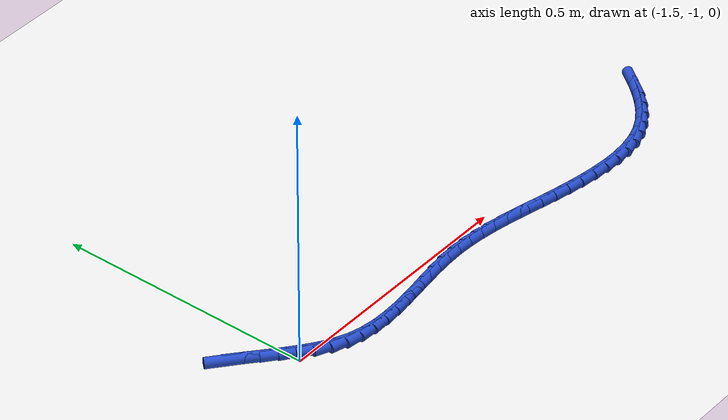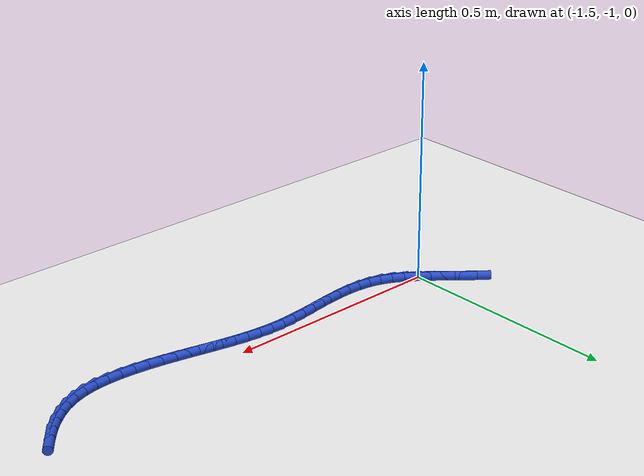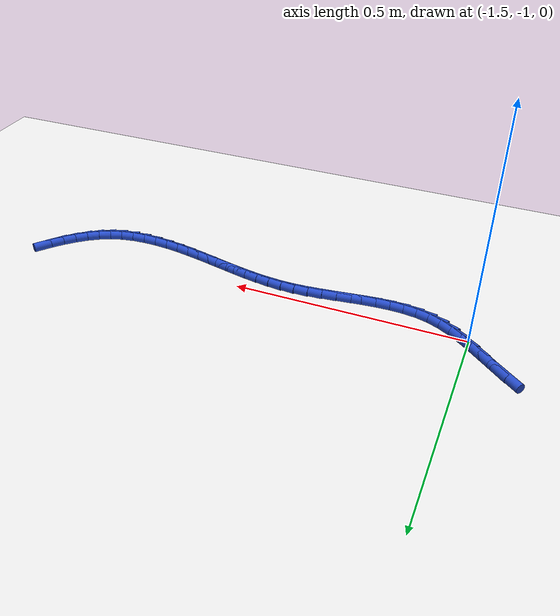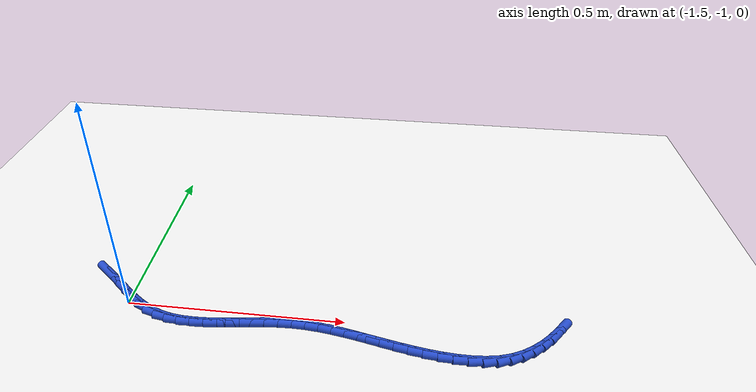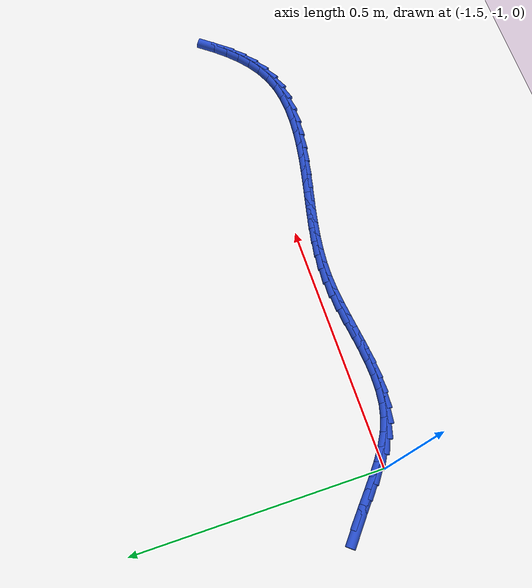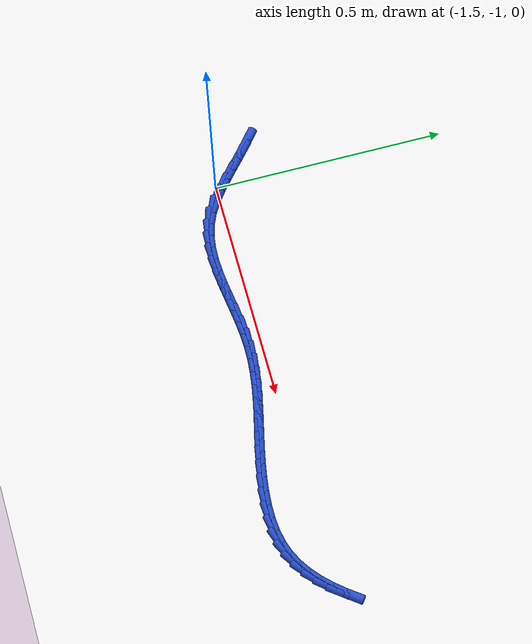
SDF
<sdf version="1.6">
 <world name="default">
  <model name="ground_plane">
   <static>1</static>
   <link name="link">
    <collision name="collision">
     <geometry><plane><normal>0 0 1</normal><size>100 100</size></plane></geometry>
     <surface><friction><ode><mu>100</mu><mu2>50</mu2></ode></friction></surface>
    </collision>
    <visual name="visual">
     <cast_shadows>0</cast_shadows>
     <geometry><plane><normal>0 0 1</normal><size>100 100</size></plane></geometry>
     <material>
      <script><uri>file://media/materials/scripts/gazebo.material</uri><name>Gazebo/WhiteGlow</name></script>
     </material>
    </visual>
   </link>
  </model>
  <model name="line">
   <link name="link_154">
    <pose>-1.5815976846223327 -0.913355872803538 0.01 0 1.57 -0.6890473158257607</pose>
    <collision name="collision">
     <geometry><cylinder><radius>0.01</radius><length>0.08</length></cylinder></geometry>
    </collision>
    <visual name="visual">
     <material>
      <script><name>Gazebo/Blue</name><uri>file://media/materials/scripts/gazebo.material</uri></script>
     </material>
     <geometry><cylinder><radius>0.01</radius><length>0.08</length></cylinder></geometry>
    </visual>
   </link>
   <link name="link_155">
    <pose>-1.557754601798094 -0.9329962720357301 0.01 0 1.57 -0.7118150997280901</pose>
    <collision name="collision">
     <geometry><cylinder><radius>0.01</radius><length>0.08</length></cylinder></geometry>
    </collision>
    <visual name="visual">
     <material>
      <script><name>Gazebo/Blue</name><uri>file://media/materials/scripts/gazebo.material</uri></script>
     </material>
     <geometry><cylinder><radius>0.01</radius><length>0.08</length></cylinder></geometry>
    </visual>
   </link>
   <link name="link_156">
    <pose>-1.53432056611038 -0.9532125727063401 0.01 0 1.57 -0.7089277884613254</pose>
    <collision name="collision">
     <geometry><cylinder><radius>0.01</radius><length>0.08</length></cylinder></geometry>
    </collision>
    <visual name="visual">
     <material>
      <script><name>Gazebo/Blue</name><uri>file://media/materials/scripts/gazebo.material</uri></script>
     </material>
     <geometry><cylinder><radius>0.01</radius><length>0.08</length></cylinder></geometry>
    </visual>
   </link>
   <link name="link_157">
    <pose>-1.5110045711086688 -0.9732099095961065 0.01 0 1.57 -0.6797140224128315</pose>
    <collision name="collision">
     <geometry><cylinder><radius>0.01</radius><length>0.08</length></cylinder></geometry>
    </collision>
    <visual name="visual">
     <material>
      <script><name>Gazebo/Blue</name><uri>file://media/materials/scripts/gazebo.material</uri></script>
     </material>
     <geometry><cylinder><radius>0.01</radius><length>0.08</length></cylinder></geometry>
    </visual>
   </link>
   <link name="link_158">
    <pose>-1.4875156103424403 -0.9921934174857672 0.01 0 1.57 -0.6220599378149294</pose>
    <collision name="collision">
     <geometry><cylinder><radius>0.01</radius><length>0.08</length></cylinder></geometry>
    </collision>
    <visual name="visual">
     <material>
      <script><name>Gazebo/Blue</name><uri>file://media/materials/scripts/gazebo.material</uri></script>
     </material>
     <geometry><cylinder><radius>0.01</radius><length>0.08</length></cylinder></geometry>
    </visual>
   </link>
   <link name="link_159">
    <pose>-1.4635626773611718 -1.00936823115606 0.01 0 1.57 -0.5328415370142888</pose>
    <collision name="collision">
     <geometry><cylinder><radius>0.01</radius><length>0.08</length></cylinder></geometry>
    </collision>
    <visual name="visual">
     <material>
      <script><name>Gazebo/Blue</name><uri>file://media/materials/scripts/gazebo.material</uri></script>
     </material>
     <geometry><cylinder><radius>0.01</radius><length>0.08</length></cylinder></geometry>
    </visual>
   </link>
   <link name="link_160">
    <pose>-1.438854765714341 -1.0239394853877226 0.01 0 1.57 -0.40932816360541957</pose>
    <collision name="collision">
     <geometry><cylinder><radius>0.01</radius><length>0.08</length></cylinder></geometry>
    </collision>
    <visual name="visual">
     <material>
      <script><name>Gazebo/Blue</name><uri>file://media/materials/scripts/gazebo.material</uri></script>
     </material>
     <geometry><cylinder><radius>0.01</radius><length>0.08</length></cylinder></geometry>
    </visual>
   </link>
   <link name="link_161">
    <pose>-1.4131008843091826 -1.035112360996508 0.01 0 1.57 -0.2627518671939328</pose>
    <collision name="collision">
     <geometry><cylinder><radius>0.01</radius><length>0.08</length></cylinder></geometry>
    </collision>
    <visual name="visual">
     <material>
      <script><name>Gazebo/Blue</name><uri>file://media/materials/scripts/gazebo.material</uri></script>
     </material>
     <geometry><cylinder><radius>0.01</radius><length>0.08</length></cylinder></geometry>
    </visual>
   </link>
   <link name="link_162">
    <pose>-1.386104013142424 -1.0423737180107608 0.01 0 1.57 -0.13377866792018103</pose>
    <collision name="collision">
     <geometry><cylinder><radius>0.01</radius><length>0.08</length></cylinder></geometry>
    </collision>
    <visual name="visual">
     <material>
      <script><name>Gazebo/Blue</name><uri>file://media/materials/scripts/gazebo.material</uri></script>
     </material>
     <geometry><cylinder><radius>0.01</radius><length>0.08</length></cylinder></geometry>
    </visual>
   </link>
   <link name="link_163">
    <pose>-1.357983345100116 -1.0461582675282832 0.01 0 1.57 -0.03239229442047825</pose>
    <collision name="collision">
     <geometry><cylinder><radius>0.01</radius><length>0.08</length></cylinder></geometry>
    </collision>
    <visual name="visual">
     <material>
      <script><name>Gazebo/Blue</name><uri>file://media/materials/scripts/gazebo.material</uri></script>
     </material>
     <geometry><cylinder><radius>0.01</radius><length>0.08</length></cylinder></geometry>
    </visual>
   </link>
   <link name="link_164">
    <pose>-1.328924514376184 -1.0470998790836588 0.01 0 1.57 0.04249031399444827</pose>
    <collision name="collision">
     <geometry><cylinder><radius>0.01</radius><length>0.08</length></cylinder></geometry>
    </collision>
    <visual name="visual">
     <material>
      <script><name>Gazebo/Blue</name><uri>file://media/materials/scripts/gazebo.material</uri></script>
     </material>
     <geometry><cylinder><radius>0.01</radius><length>0.08</length></cylinder></geometry>
    </visual>
   </link>
   <link name="link_165">
    <pose>-1.2991131551645552 -1.0458324222114703 0.01 0 1.57 0.09330365197728344</pose>
    <collision name="collision">
     <geometry><cylinder><radius>0.01</radius><length>0.08</length></cylinder></geometry>
    </collision>
    <visual name="visual">
     <material>
      <script><name>Gazebo/Blue</name><uri>file://media/materials/scripts/gazebo.material</uri></script>
     </material>
     <geometry><cylinder><radius>0.01</radius><length>0.08</length></cylinder></geometry>
    </visual>
   </link>
   <link name="link_166">
    <pose>-1.2687349016591547 -1.0429897664463008 0.01 0 1.57 0.1224033743826129</pose>
    <collision name="collision">
     <geometry><cylinder><radius>0.01</radius><length>0.08</length></cylinder></geometry>
    </collision>
    <visual name="visual">
     <material>
      <script><name>Gazebo/Blue</name><uri>file://media/materials/scripts/gazebo.material</uri></script>
     </material>
     <geometry><cylinder><radius>0.01</radius><length>0.08</length></cylinder></geometry>
    </visual>
   </link>
   <link name="link_167">
    <pose>-1.2379753880539102 -1.039205781322733 0.01 0 1.57 0.1314116525096149</pose>
    <collision name="collision">
     <geometry><cylinder><radius>0.01</radius><length>0.08</length></cylinder></geometry>
    </collision>
    <visual name="visual">
     <material>
      <script><name>Gazebo/Blue</name><uri>file://media/materials/scripts/gazebo.material</uri></script>
     </material>
     <geometry><cylinder><radius>0.01</radius><length>0.08</length></cylinder></geometry>
    </visual>
   </link>
   <link name="link_168">
    <pose>-1.2070202485427473 -1.0351143363753499 0.01 0 1.57 0.12099557944460802</pose>
    <collision name="collision">
     <geometry><cylinder><radius>0.01</radius><length>0.08</length></cylinder></geometry>
    </collision>
    <visual name="visual">
     <material>
      <script><name>Gazebo/Blue</name><uri>file://media/materials/scripts/gazebo.material</uri></script>
     </material>
     <geometry><cylinder><radius>0.01</radius><length>0.08</length></cylinder></geometry>
    </visual>
   </link>
   <link name="link_169">
    <pose>-1.1760551173195928 -1.0313493011387351 0.01 0 1.57 0.09084386717569258</pose>
    <collision name="collision">
     <geometry><cylinder><radius>0.01</radius><length>0.08</length></cylinder></geometry>
    </collision>
    <visual name="visual">
     <material>
      <script><name>Gazebo/Blue</name><uri>file://media/materials/scripts/gazebo.material</uri></script>
     </material>
     <geometry><cylinder><radius>0.01</radius><length>0.08</length></cylinder></geometry>
    </visual>
   </link>
   <link name="link_170">
    <pose>-1.1452656285783713 -1.0285445451474708 0.01 0 1.57 0.039775032890308155</pose>
    <collision name="collision">
     <geometry><cylinder><radius>0.01</radius><length>0.08</length></cylinder></geometry>
    </collision>
    <visual name="visual">
     <material>
      <script><name>Gazebo/Blue</name><uri>file://media/materials/scripts/gazebo.material</uri></script>
     </material>
     <geometry><cylinder><radius>0.01</radius><length>0.08</length></cylinder></geometry>
    </visual>
   </link>
   <link name="link_171">
    <pose>-1.1148373203724473 -1.0273336195374934 0.01 0 1.57 -0.026356756659822275</pose>
    <collision name="collision">
     <geometry><cylinder><radius>0.01</radius><length>0.08</length></cylinder></geometry>
    </collision>
    <visual name="visual">
     <material>
      <script><name>Gazebo/Blue</name><uri>file://media/materials/scripts/gazebo.material</uri></script>
     </material>
     <geometry><cylinder><radius>0.01</radius><length>0.08</length></cylinder></geometry>
    </visual>
   </link>
   <link name="link_172">
    <pose>-1.0848872225739226 -1.0281231898181062 0.01 0 1.57 -0.0868173020914685</pose>
    <collision name="collision">
     <geometry><cylinder><radius>0.01</radius><length>0.08</length></cylinder></geometry>
    </collision>
    <visual name="visual">
     <material>
      <script><name>Gazebo/Blue</name><uri>file://media/materials/scripts/gazebo.material</uri></script>
     </material>
     <geometry><cylinder><radius>0.01</radius><length>0.08</length></cylinder></geometry>
    </visual>
   </link>
   <link name="link_173">
    <pose>-1.0553435359332186 -1.0306945565741321 0.01 0 1.57 -0.13687668580113288</pose>
    <collision name="collision">
     <geometry><cylinder><radius>0.01</radius><length>0.08</length></cylinder></geometry>
    </collision>
    <visual name="visual">
     <material>
      <script><name>Gazebo/Blue</name><uri>file://media/materials/scripts/gazebo.material</uri></script>
     </material>
     <geometry><cylinder><radius>0.01</radius><length>0.08</length></cylinder></geometry>
    </visual>
   </link>
   <link name="link_174">
    <pose>-1.0261022059391962 -1.0347221973059564 0.01 0 1.57 -0.17577898685224924</pose>
    <collision name="collision">
     <geometry><cylinder><radius>0.01</radius><length>0.08</length></cylinder></geometry>
    </collision>
    <visual name="visual">
     <material>
      <script><name>Gazebo/Blue</name><uri>file://media/materials/scripts/gazebo.material</uri></script>
     </material>
     <geometry><cylinder><radius>0.01</radius><length>0.08</length></cylinder></geometry>
    </visual>
   </link>
   <link name="link_175">
    <pose>-0.9970591780807156 -1.0398805895139633 0.01 0 1.57 -0.20316379247448885</pose>
    <collision name="collision">
     <geometry><cylinder><radius>0.01</radius><length>0.08</length></cylinder></geometry>
    </collision>
    <visual name="visual">
     <material>
      <script><name>Gazebo/Blue</name><uri>file://media/materials/scripts/gazebo.material</uri></script>
     </material>
     <geometry><cylinder><radius>0.01</radius><length>0.08</length></cylinder></geometry>
    </visual>
   </link>
   <link name="link_176">
    <pose>-0.9681103978466398 -1.0458442106985368 0.01 0 1.57 -0.2189350190055144</pose>
    <collision name="collision">
     <geometry><cylinder><radius>0.01</radius><length>0.08</length></cylinder></geometry>
    </collision>
    <visual name="visual">
     <material>
      <script><name>Gazebo/Blue</name><uri>file://media/materials/scripts/gazebo.material</uri></script>
     </material>
     <geometry><cylinder><radius>0.01</radius><length>0.08</length></cylinder></geometry>
    </visual>
   </link>
   <link name="link_177">
    <pose>-0.9391518107258288 -1.052287538360062 0.01 0 1.57 -0.22315398365123187</pose>
    <collision name="collision">
     <geometry><cylinder><radius>0.01</radius><length>0.08</length></cylinder></geometry>
    </collision>
    <visual name="visual">
     <material>
      <script><name>Gazebo/Blue</name><uri>file://media/materials/scripts/gazebo.material</uri></script>
     </material>
     <geometry><cylinder><radius>0.01</radius><length>0.08</length></cylinder></geometry>
    </visual>
   </link>
   <link name="link_178">
    <pose>-0.9100793622071434 -1.0588850499989235 0.01 0 1.57 -0.21597360536380122</pose>
    <collision name="collision">
     <geometry><cylinder><radius>0.01</radius><length>0.08</length></cylinder></geometry>
    </collision>
    <visual name="visual">
     <material>
      <script><name>Gazebo/Blue</name><uri>file://media/materials/scripts/gazebo.material</uri></script>
     </material>
     <geometry><cylinder><radius>0.01</radius><length>0.08</length></cylinder></geometry>
    </visual>
   </link>
   <link name="link_179">
    <pose>-0.8807889977794439 -1.0653112231155053 0.01 0 1.57 -0.19761781717696922</pose>
    <collision name="collision">
     <geometry><cylinder><radius>0.01</radius><length>0.08</length></cylinder></geometry>
    </collision>
    <visual name="visual">
     <material>
      <script><name>Gazebo/Blue</name><uri>file://media/materials/scripts/gazebo.material</uri></script>
     </material>
     <geometry><cylinder><radius>0.01</radius><length>0.08</length></cylinder></geometry>
    </visual>
   </link>
   <link name="link_180">
    <pose>-0.8511766629315927 -1.071240535210192 0.01 0 1.57 -0.16840333917156527</pose>
    <collision name="collision">
     <geometry><cylinder><radius>0.01</radius><length>0.08</length></cylinder></geometry>
    </collision>
    <visual name="visual">
     <material>
      <script><name>Gazebo/Blue</name><uri>file://media/materials/scripts/gazebo.material</uri></script>
     </material>
     <geometry><cylinder><radius>0.01</radius><length>0.08</length></cylinder></geometry>
    </visual>
   </link>
   <link name="link_181">
    <pose>-0.8211383031524504 -1.076347463783368 0.01 0 1.57 -0.1286922212195776</pose>
    <collision name="collision">
     <geometry><cylinder><radius>0.01</radius><length>0.08</length></cylinder></geometry>
    </collision>
    <visual name="visual">
     <material>
      <script><name>Gazebo/Blue</name><uri>file://media/materials/scripts/gazebo.material</uri></script>
     </material>
     <geometry><cylinder><radius>0.01</radius><length>0.08</length></cylinder></geometry>
    </visual>
   </link>
   <link name="link_182">
    <pose>-0.7905939861019871 -1.0803001248338036 0.01 0 1.57 -0.07701132139406909</pose>
    <collision name="collision">
     <geometry><cylinder><radius>0.01</radius><length>0.08</length></cylinder></geometry>
    </collision>
    <visual name="visual">
     <material>
      <script><name>Gazebo/Blue</name><uri>file://media/materials/scripts/gazebo.material</uri></script>
     </material>
     <geometry><cylinder><radius>0.01</radius><length>0.08</length></cylinder></geometry>
    </visual>
   </link>
   <link name="link_183">
    <pose>-0.7598088792011967 -1.0826756246133782 0.01 0 1.57 -0.010079408084147123</pose>
    <collision name="collision">
     <geometry><cylinder><radius>0.01</radius><length>0.08</length></cylinder></geometry>
    </collision>
    <visual name="visual">
     <material>
      <script><name>Gazebo/Blue</name><uri>file://media/materials/scripts/gazebo.material</uri></script>
     </material>
     <geometry><cylinder><radius>0.01</radius><length>0.08</length></cylinder></geometry>
    </visual>
   </link>
   <link name="link_184">
    <pose>-0.7293059334367081 -1.0829830866637253 0.01 0 1.57 0.07573765523288184</pose>
    <collision name="collision">
     <geometry><cylinder><radius>0.01</radius><length>0.08</length></cylinder></geometry>
    </collision>
    <visual name="visual">
     <material>
      <script><name>Gazebo/Blue</name><uri>file://media/materials/scripts/gazebo.material</uri></script>
     </material>
     <geometry><cylinder><radius>0.01</radius><length>0.08</length></cylinder></geometry>
    </visual>
   </link>
   <link name="link_185">
    <pose>-0.6996142915512755 -1.0807300016358705 0.01 0 1.57 0.1850171510953455</pose>
    <collision name="collision">
     <geometry><cylinder><radius>0.01</radius><length>0.08</length></cylinder></geometry>
    </collision>
    <visual name="visual">
     <material>
      <script><name>Gazebo/Blue</name><uri>file://media/materials/scripts/gazebo.material</uri></script>
     </material>
     <geometry><cylinder><radius>0.01</radius><length>0.08</length></cylinder></geometry>
    </visual>
   </link>
   <link name="link_186">
    <pose>-0.6712630962876519 -1.0754238601808417 0.01 0 1.57 0.32011357896820464</pose>
    <collision name="collision">
     <geometry><cylinder><radius>0.01</radius><length>0.08</length></cylinder></geometry>
    </collision>
    <visual name="visual">
     <material>
      <script><name>Gazebo/Blue</name><uri>file://media/materials/scripts/gazebo.material</uri></script>
     </material>
     <geometry><cylinder><radius>0.01</radius><length>0.08</length></cylinder></geometry>
    </visual>
   </link>
   <link name="link_187">
    <pose>-0.6447322284058097 -1.0666284672561592 0.01 0 1.57 0.45942437111932505</pose>
    <collision name="collision">
     <geometry><cylinder><radius>0.01</radius><length>0.08</length></cylinder></geometry>
    </collision>
    <visual name="visual">
     <material>
      <script><name>Gazebo/Blue</name><uri>file://media/materials/scripts/gazebo.material</uri></script>
     </material>
     <geometry><cylinder><radius>0.01</radius><length>0.08</length></cylinder></geometry>
    </visual>
   </link>
   <link name="link_188">
    <pose>-0.6200539471111022 -1.0544193306781744 0.01 0 1.57 0.5855850359986695</pose>
    <collision name="collision">
     <geometry><cylinder><radius>0.01</radius><length>0.08</length></cylinder></geometry>
    </collision>
    <visual name="visual">
     <material>
      <script><name>Gazebo/Blue</name><uri>file://media/materials/scripts/gazebo.material</uri></script>
     </material>
     <geometry><cylinder><radius>0.01</radius><length>0.08</length></cylinder></geometry>
    </visual>
   </link>
   <link name="link_189">
    <pose>-0.5970217877220197 -1.039144857756389 0.01 0 1.57 0.6945534245349436</pose>
    <collision name="collision">
     <geometry><cylinder><radius>0.01</radius><length>0.08</length></cylinder></geometry>
    </collision>
    <visual name="visual">
     <material>
      <script><name>Gazebo/Blue</name><uri>file://media/materials/scripts/gazebo.material</uri></script>
     </material>
     <geometry><cylinder><radius>0.01</radius><length>0.08</length></cylinder></geometry>
    </visual>
   </link>
   <link name="link_190">
    <pose>-0.575427052798233 -1.0211560081998912 0.01 0 1.57 0.7850606879915145</pose>
    <collision name="collision">
     <geometry><cylinder><radius>0.01</radius><length>0.08</length></cylinder></geometry>
    </collision>
    <visual name="visual">
     <material>
      <script><name>Gazebo/Blue</name><uri>file://media/materials/scripts/gazebo.material</uri></script>
     </material>
     <geometry><cylinder><radius>0.01</radius><length>0.08</length></cylinder></geometry>
    </visual>
   </link>
   <link name="link_191">
    <pose>-0.5550610448994123 -1.0008037417177678 0.01 0 1.57 0.8576455987913635</pose>
    <collision name="collision">
     <geometry><cylinder><radius>0.01</radius><length>0.08</length></cylinder></geometry>
    </collision>
    <visual name="visual">
     <material>
      <script><name>Gazebo/Blue</name><uri>file://media/materials/scripts/gazebo.material</uri></script>
     </material>
     <geometry><cylinder><radius>0.01</radius><length>0.08</length></cylinder></geometry>
    </visual>
   </link>
   <link name="link_192">
    <pose>-0.5357150665852286 -0.9784390180191073 0.01 0 1.57 0.9137179293695722</pose>
    <collision name="collision">
     <geometry><cylinder><radius>0.01</radius><length>0.08</length></cylinder></geometry>
    </collision>
    <visual name="visual">
     <material>
      <script><name>Gazebo/Blue</name><uri>file://media/materials/scripts/gazebo.material</uri></script>
     </material>
     <geometry><cylinder><radius>0.01</radius><length>0.08</length></cylinder></geometry>
    </visual>
   </link>
  </model>
 </world>
</sdf>
